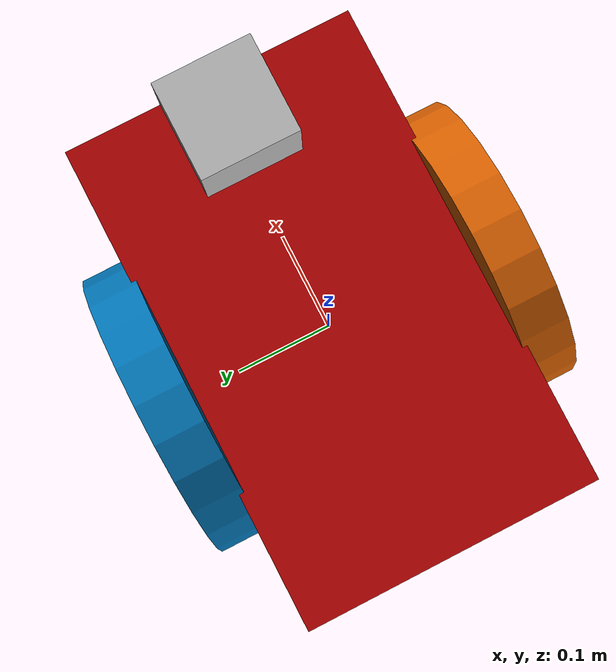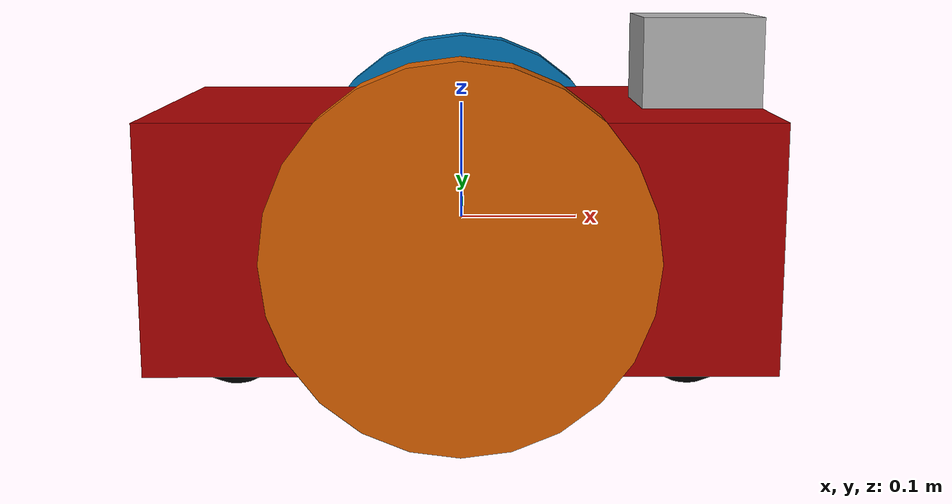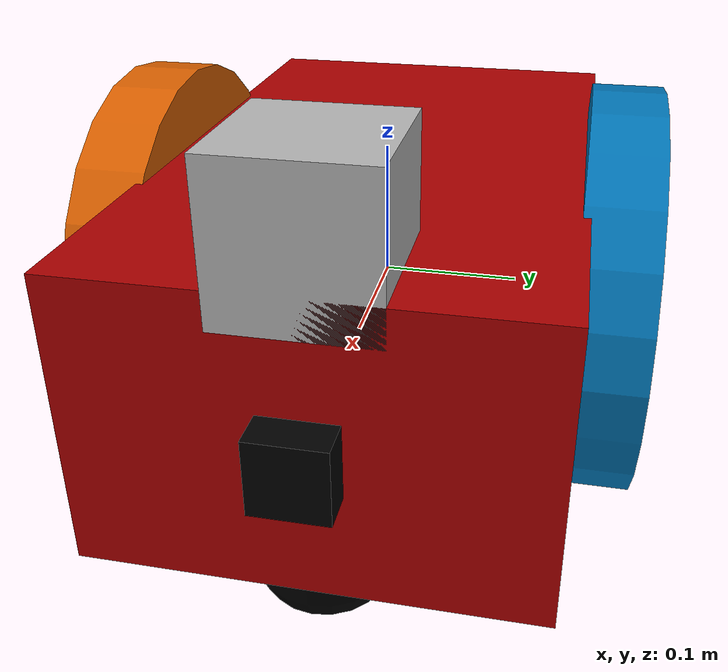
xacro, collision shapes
<?xml version='1.0'?>

<robot name="my_robot" xmlns:xacro="http://www.ros.org/wiki/xacro">

  <xacro:include filename="$(find my_robot)/urdf/my_robot.gazebo" />

  <material name="red">
    <color rgba= "${169/255} 0 0 1"/>
  </material>
  <material name="black">
    <color rgba="0 0 0 1"/>
  </material>

  <link name="robot_footprint"></link>

  <joint name="robot_footprint_joint" type="fixed">
    <origin xyz="0 0 0" rpy="0 0 0" />
    <parent link="robot_footprint"/>
    <child link="chassis" />
  </joint>

  <link name='chassis'>
    <pose>0 0 0.1 0 0 0</pose>

    <inertial>
      <mass value="10.0"/>
      <origin xyz="0.0 0 0" rpy=" 0 0 0"/>
      <inertia
          ixx="0.0975" ixy="0" ixz="0"
          iyy="0.0975" iyz="0"
          izz="0.0975"
      />
    </inertial>

    <collision name='collision'>
      <origin xyz="0 0 0" rpy=" 0 0 0"/>
      <geometry>
        <box size=".5 .3 .2"/>
      </geometry>
    </collision>

    <visual name='chassis_visual'>
      <origin xyz="0 0 0" rpy=" 0 0 0"/>
      <geometry>
        <box size=".5 .3 .2"/>
      </geometry>
      <material name="red"/>
    </visual>
  </link>

  <joint name="back_caster_join" type="fixed">
    <origin xyz="-0.2 0.0 -0.1" rpy="0.0 0.0 0.0"/>
    <parent link="chassis"/>
    <child link="back_caster"/>
  </joint>

  <link name="back_caster">

    <inertial>
      <origin xyz="0.0 0.0 0.0" rpy="0.0 0.0 0.0"/>
      <mass value="2.5"/>
      <inertia ixx="0.0025" ixy="0.0" ixz="0.0" iyy="0.0025" iyz="0.0" izz="0.0025"/>
    </inertial>

    <collision name='back_caster_collision'>
      <origin xyz="0 0 0" rpy=" 0 0 0"/>
      <geometry>
        <sphere radius="0.05"/>
      </geometry>
      <surface>
        <friction>
          <ode>
            <mu>0.00001</mu>
            <mu2>0.00001</mu2>
          </ode>
        </friction>
      </surface>
    </collision>

    <visual name='back_caster_visual'>
      <origin xyz="0 0 0" rpy=" 0 0 0"/>
      <geometry>
        <sphere radius="0.05"/>
      </geometry>
      <material name="black"/>
    </visual>
  </link>

  <joint name="front_caster_join" type="fixed">
    <origin xyz="0.2 0.0 -0.1" rpy="0.0 0.0 0.0"/>
    <parent link="chassis"/>
    <child link="front_caster"/>
  </joint>

  <link name="front_caster">

    <inertial>
      <origin xyz="0.0 0.0 0.0" rpy="0.0 0.0 0.0"/>
      <mass value="2.5"/>
      <inertia ixx="0.0025" ixy="0.0" ixz="0.0" iyy="0.0025" iyz="0.0" izz="0.0025"/>
    </inertial>

    <collision name='front_caster_collision'>
      <origin xyz="0 0 0" rpy=" 0 0 0"/>
      <geometry>
        <sphere radius="0.05"/>
      </geometry>
      <surface>
        <friction>
          <ode>
            <mu>0.00001</mu>
            <mu2>0.00001</mu2>
          </ode>
        </friction>
      </surface>
    </collision>

    <visual name='front_caster_visual'>
      <origin xyz="0 0 0" rpy=" 0 0 0"/>
      <geometry>
        <sphere radius="0.05"/>
      </geometry>
      <material name="black"/>
    </visual>

  </link>

  <joint type="continuous" name="left_wheel_hinge">
    <origin xyz="0 0.17 0" rpy="0 0 0"/>
    <child link="left_wheel"/>
    <parent link="chassis"/>
    <axis xyz="0 1 0" rpy="0 0 0"/>
    <limit effort="10000" velocity="1000"/>
    <dynamics damping="1.0" friction="1.0"/>
  </joint>

  <link name="left_wheel">
    <inertial name='left_wheel_inertial'>
      <origin xyz="0 0 0" rpy="0 1.5707 1.5707"/>
      <mass value="5"/>
      <inertia ixx="0.1" ixy="0" ixz="0" iyy="0.1" iyz="0" izz="0.1"/>
    </inertial>
    <collision name="collision">
      <origin xyz="0 0 0" rpy="0 1.5707 1.5707"/>
      <geometry>
        <cylinder radius="0.15" length="0.05"/>
      </geometry>
    </collision>
    <visual name="visual">
      <origin xyz="0 0 0" rpy="0 1.5707 1.5707"/>
      <geometry>
        <mesh scale="0.68 0.68 0.5" filename="package://my_robot/models/wheel/meshes/wheel.dae"/>
      </geometry>
    </visual>
  </link>

  <joint type="continuous" name="right_wheel_hinge">
    <origin xyz="0 -0.17 0" rpy="0 0 0"/>
    <child link="right_wheel"/>
    <parent link="chassis"/>
    <axis xyz="0 1 0" rpy="0 0 0"/>
    <limit effort="10000" velocity="1000"/>
    <dynamics damping="1.0" friction="1.0"/>
  </joint>

  <link name="right_wheel">
    <inertial name='right_wheel_inertial'>
      <origin xyz="0 0 0" rpy="0 -1.5707 1.5707"/>
      <mass value="5"/>
      <inertia ixx="0.1" ixy="0" ixz="0" iyy="0.1" iyz="0" izz="0.1"/>
    </inertial>
    <collision name="collision">
      <origin xyz="0 0 0" rpy="0 -1.5707 1.5707"/>
      <geometry>
        <cylinder radius="0.15" length="0.05"/>
      </geometry>
    </collision>
    <visual name="visual">
      <origin xyz="0 0 0" rpy="0 -1.5707 1.5707"/>
      <geometry>
        <mesh scale="0.68 0.68 0.5" filename="package://my_robot/models/wheel/meshes/wheel.dae"/>
      </geometry>
    </visual>
  </link>

  <joint name="camera_join" type="fixed">
    <origin xyz="0.25 0.0 0.0" rpy="0.0 0.0 0.0"/>
    <parent link="chassis"/>
    <child link="camera"/>
    <axis xyz="0.0 1 0.0"/>
  </joint>

  <link name="camera">

    <inertial>
      <mass value="0.1"/>
      <inertia ixx="1e-6" ixy="0.0" ixz="0.0" iyy="1e-6" iyz="0.0" izz="1e-6"/>
    </inertial>

    <visual>
      <origin xyz="0 0 0" rpy="0 0 0"/>
      <geometry>
        <box size="0.05 0.05 0.05"/>
      </geometry>
      <material name="black"/>
    </visual>

    <collision>
      <origin xyz="0 0 0" rpy="0 0 0"/>
      <geometry>
        <box size="0.05 0.05 0.05"/>
      </geometry>
    </collision>

  </link>

  <link name="hokuyo">

    <inertial>
      <origin xyz="0.0 0.0 0.0" rpy="0.0 0.0 0.0"/>
      <mass value="1e-5"/>
      <inertia ixx="1e-6" ixy="0.0" ixz="0.0" iyy="1e-6" iyz="0.0" izz="1e-6"/>
    </inertial>

    <visual>
      <origin xyz="0.0 0.0 0.0" rpy="0.0 0.0 0.0"/>
      <geometry>
        <mesh filename="package://my_robot/meshes/hokuyo.dae"/>
      </geometry>
    </visual>

    <collision>
      <origin xyz="0.0 0.0 0.0" rpy="0.0 0.0 0.0"/>
      <geometry>
        <box size="0.1 0.1 0.1"/>
      </geometry>
    </collision>

  </link>

  <joint name="hokuyo_joint" type="fixed">
    <origin xyz="0.2 0.0 0.125" rpy="0.0 0.0 0.0"/>
    <parent link="chassis"/>
    <child link="hokuyo"/>
    <axis xyz="0.0 1 0.0"/>
  </joint>

  <gazebo reference="camera">
    <material>Gazebo/Black</material>
  </gazebo>
  <gazebo reference="chassis">
    <material>Gazebo/Red</material>
  </gazebo>
  <gazebo reference="back_caster">
    <material>Gazebo/Black</material>
  </gazebo>
  <gazebo reference="front_caster">
    <material>Gazebo/Black</material>
  </gazebo>
</robot>
